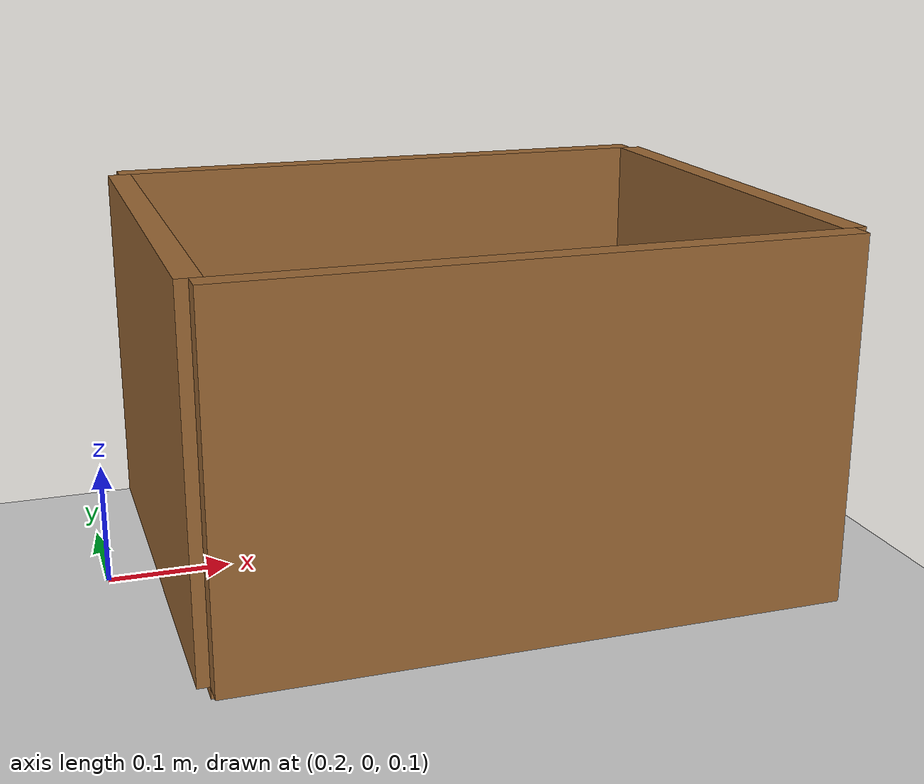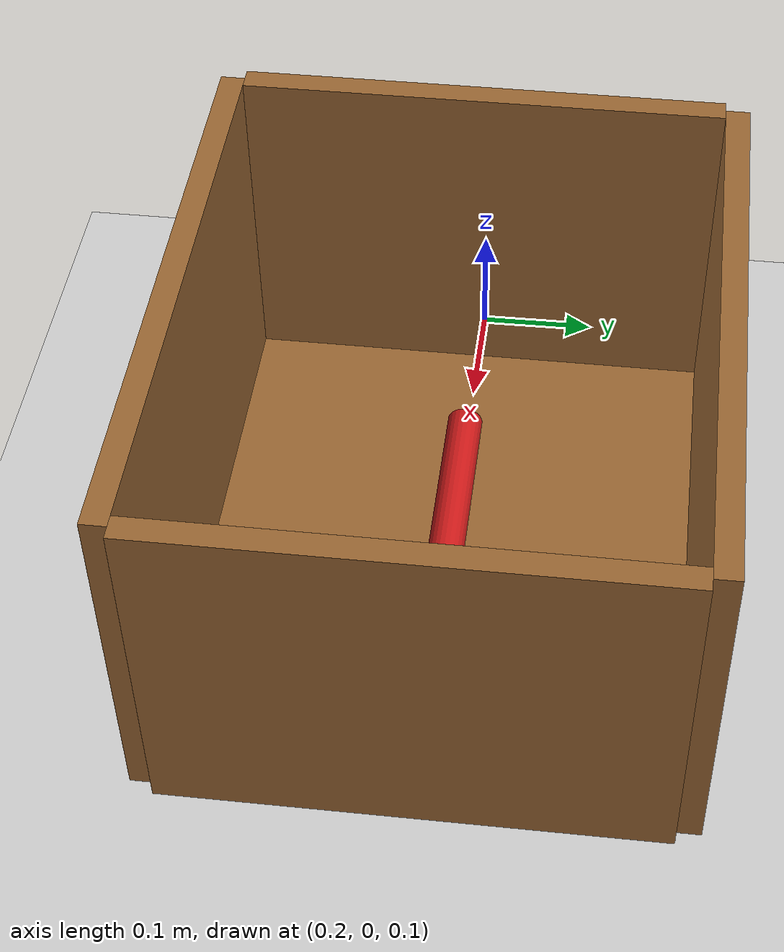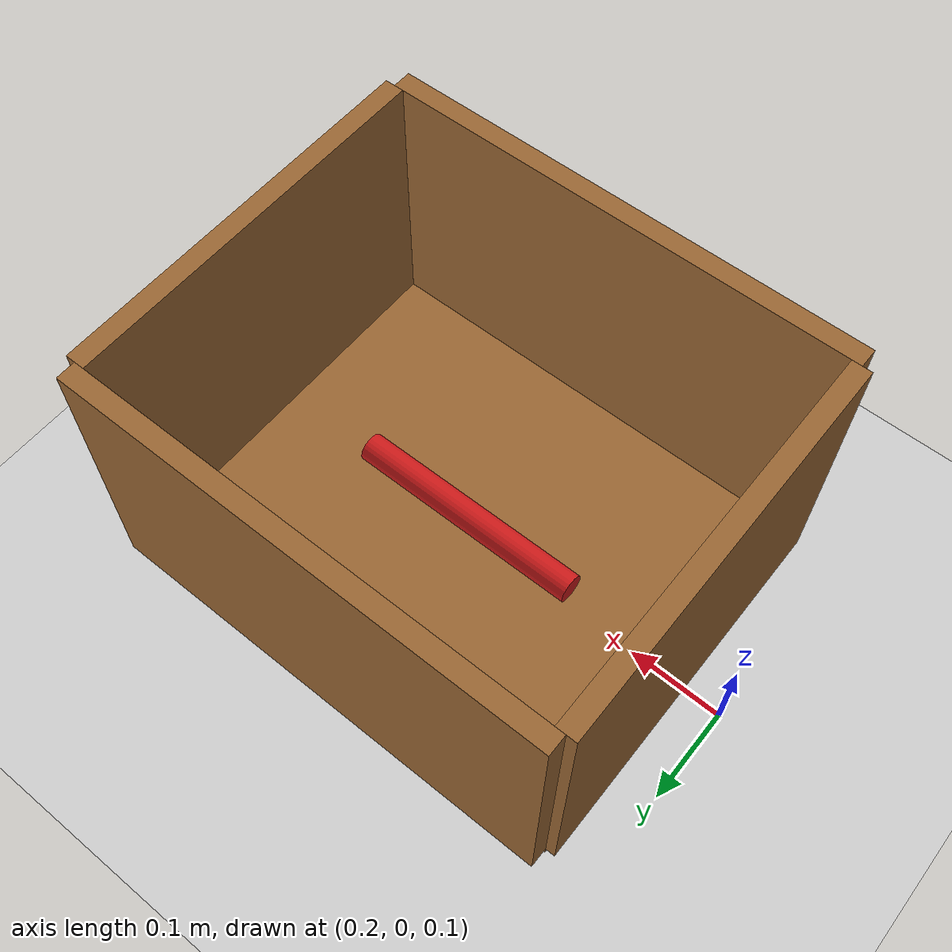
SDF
<?xml version="1.0" ?>
<sdf version="1.6">
  <world name="tomato_bin_world">
    <include>
      <uri>model://ground_plane</uri>
    </include>
    <include>
      <uri>model://sun</uri>
    </include>

    <!-- Bin: four walls and a floor, positioned in front of the robot -->
    <!-- Bin floor -->
    <model name="bin_floor">
      <static>true</static>
      <pose>0.5 0 0.1 0 0 0</pose>
      <link name="link">
        <collision name="collision">
          <geometry><box><size>0.5 0.4 0.02</size></box></geometry>
        </collision>
        <visual name="visual">
          <geometry><box><size>0.5 0.4 0.02</size></box></geometry>
          <material><ambient>0.6 0.4 0.2 1</ambient></material>
        </visual>
      </link>
    </model>

    <!-- Bin front wall (x+) -->
    <model name="bin_wall_front">
      <static>true</static>
      <pose>0.75 0 0.25 0 0 0</pose>
      <link name="link">
        <collision name="collision">
          <geometry><box><size>0.02 0.4 0.3</size></box></geometry>
        </collision>
        <visual name="visual">
          <geometry><box><size>0.02 0.4 0.3</size></box></geometry>
          <material><ambient>0.6 0.4 0.2 1</ambient></material>
        </visual>
      </link>
    </model>

    <!-- Bin back wall (x-) -->
    <model name="bin_wall_back">
      <static>true</static>
      <pose>0.25 0 0.25 0 0 0</pose>
      <link name="link">
        <collision name="collision">
          <geometry><box><size>0.02 0.4 0.3</size></box></geometry>
        </collision>
        <visual name="visual">
          <geometry><box><size>0.02 0.4 0.3</size></box></geometry>
          <material><ambient>0.6 0.4 0.2 1</ambient></material>
        </visual>
      </link>
    </model>

    <!-- Bin left wall (y+) -->
    <model name="bin_wall_left">
      <static>true</static>
      <pose>0.5 0.21 0.25 0 0 0</pose>
      <link name="link">
        <collision name="collision">
          <geometry><box><size>0.5 0.02 0.3</size></box></geometry>
        </collision>
        <visual name="visual">
          <geometry><box><size>0.5 0.02 0.3</size></box></geometry>
          <material><ambient>0.6 0.4 0.2 1</ambient></material>
        </visual>
      </link>
    </model>

    <!-- Bin right wall (y-) -->
    <model name="bin_wall_right">
      <static>true</static>
      <pose>0.5 -0.21 0.25 0 0 0</pose>
      <link name="link">
        <collision name="collision">
          <geometry><box><size>0.5 0.02 0.3</size></box></geometry>
        </collision>
        <visual name="visual">
          <geometry><box><size>0.5 0.02 0.3</size></box></geometry>
          <material><ambient>0.6 0.4 0.2 1</ambient></material>
        </visual>
      </link>
    </model>

    <!-- Tomato truss placeholder: a red cylinder lying on its side -->
    <model name="tomato_truss">
      <static>true</static>
      <pose>0.5 0 0.14 0 1.5708 0</pose>
      <link name="link">
        <collision name="collision">
          <geometry><cylinder><radius>0.015</radius><length>0.25</length></cylinder></geometry>
        </collision>
        <visual name="visual">
          <geometry><cylinder><radius>0.015</radius><length>0.25</length></cylinder></geometry>
          <material><ambient>0.8 0.1 0.1 1</ambient></material>
        </visual>
      </link>
    </model>

  </world>
</sdf>
